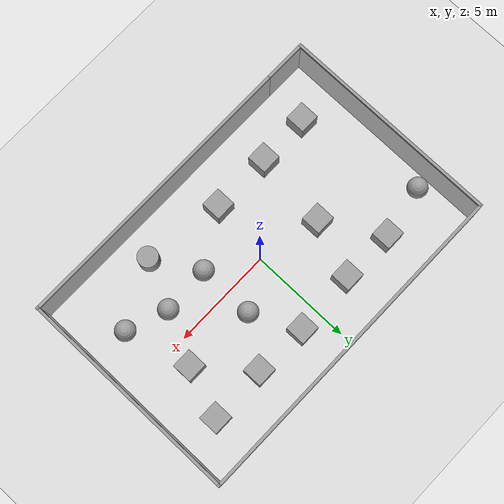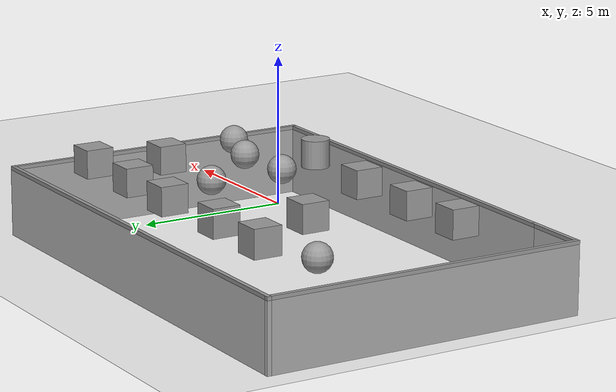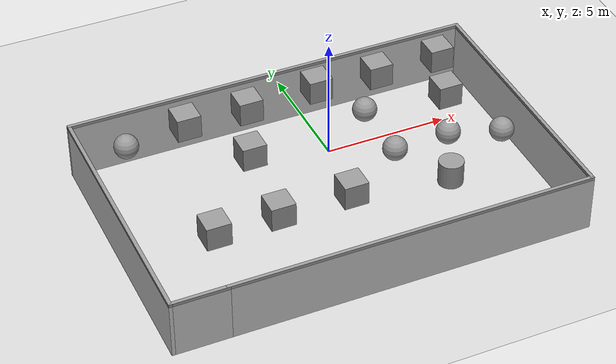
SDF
<sdf version="1.7">
 <world name="world">
  <plugin name="gazebo_ros_state" filename="libgazebo_ros_state.so">
   <ros>
    <namespace>/demo</namespace>
    <remapping>model_states:=model_states_demo</remapping>
    <remapping>link_states:=link_states_demo</remapping>
   </ros>
   <update_rate>1.0</update_rate>
  </plugin>
  <gravity>0 0 -9.8</gravity>
  <physics default="0" name="default_physics" type="ode">
   <max_step_size>0.001</max_step_size>
   <real_time_factor>1</real_time_factor>
   <real_time_update_rate>1000</real_time_update_rate>
  </physics>
  <light name="sun" type="directional">
   <pose>0 0 10 0 -0 0</pose>
   <diffuse>0.8 0.8 0.8 1</diffuse>
   <specular>0.2 0.2 0.2 1</specular>
   <attenuation>
    <range>1000</range>
    <constant>0.9</constant>
    <linear>0.01</linear>
    <quadratic>0.001</quadratic>
   </attenuation>
   <direction>-0.5 0.1 -0.9</direction>
   <spot><inner_angle>0</inner_angle><outer_angle>0</outer_angle><falloff>0</falloff></spot>
  </light>
  <model name="ground_plane">
   <static>1</static>
   <link name="link">
    <collision name="collision">
     <geometry><plane><normal>0 0 1</normal><size>100 100</size></plane></geometry>
     <surface>
      <contact><collide_bitmask>65535</collide_bitmask></contact>
      <friction><ode><mu>100</mu><mu2>50</mu2></ode></friction>
     </surface>
    </collision>
    <visual name="visual">
     <cast_shadows>0</cast_shadows>
     <geometry><plane><normal>0 0 1</normal><size>100 100</size></plane></geometry>
     <material>
      <script><uri>file://media/materials/scripts/gazebo.material</uri><name>Gazebo/Grey</name></script>
     </material>
    </visual>
   </link>
  </model>
  <gravity>0 0 -9.8</gravity>
  <magnetic_field>6e-06 2.3e-05 -4.2e-05</magnetic_field>
  <atmosphere type="adiabatic"/>
  <physics type="ode">
   <max_step_size>0.001</max_step_size>
   <real_time_factor>1</real_time_factor>
   <real_time_update_rate>1000</real_time_update_rate>
  </physics>
  <scene><ambient>0.4 0.4 0.4 1</ambient><background>0.7 0.7 0.7 1</background><shadows>1</shadows></scene>
  <audio><device>default</device></audio>
  <spherical_coordinates>
   <surface_model>EARTH_WGS84</surface_model>
   <latitude_deg>0</latitude_deg>
   <longitude_deg>0</longitude_deg>
   <elevation>0</elevation>
   <heading_deg>0</heading_deg>
  </spherical_coordinates>
  <model name="rl_world">
   <pose>-0.130413 -0.05396 -2.38988 0 -0 1.56821</pose>
   <link name="Wall_4">
    <collision name="Wall_4_Collision">
     <geometry><box><size>15.25 0.15 2.5</size></box></geometry>
     <pose>0 0 1.25 0 -0 0</pose>
    </collision>
    <visual name="Wall_4_Visual">
     <pose>0 0 1.25 0 -0 0</pose>
     <geometry><box><size>15.25 0.15 2.5</size></box></geometry>
     <material>
      <script><uri>file://media/materials/scripts/gazebo.material</uri><name>Gazebo/Grey</name></script>
      <ambient>1 1 1 1</ambient>
     </material>
     <meta><layer>0</layer></meta>
    </visual>
    <pose>-5.675 -1.125 0 0 -0 -1.5708</pose>
   </link>
   <link name="Wall_5">
    <collision name="Wall_5_Collision">
     <geometry><box><size>11.5 0.15 2.5</size></box></geometry>
     <pose>0 0 1.25 0 -0 0</pose>
    </collision>
    <visual name="Wall_5_Visual">
     <pose>0 0 1.25 0 -0 0</pose>
     <geometry><box><size>11.5 0.15 2.5</size></box></geometry>
     <material>
      <script><uri>file://media/materials/scripts/gazebo.material</uri><name>Gazebo/Grey</name></script>
      <ambient>1 1 1 1</ambient>
     </material>
     <meta><layer>0</layer></meta>
    </visual>
    <pose>0 -8.675 0 0 -0 0</pose>
   </link>
   <link name="Wall_6">
    <collision name="Wall_6_Collision">
     <geometry><box><size>17.5 0.15 2.5</size></box></geometry>
     <pose>0 0 1.25 0 -0 0</pose>
    </collision>
    <visual name="Wall_6_Visual">
     <pose>0 0 1.25 0 -0 0</pose>
     <geometry><box><size>17.5 0.15 2.5</size></box></geometry>
     <material>
      <script><uri>file://media/materials/scripts/gazebo.material</uri><name>Gazebo/Grey</name></script>
      <ambient>1 1 1 1</ambient>
     </material>
     <meta><layer>0</layer></meta>
    </visual>
    <pose>5.675 0 0 0 -0 1.5708</pose>
   </link>
   <link name="Wall_7">
    <collision name="Wall_7_Collision">
     <geometry><box><size>11.5 0.15 2.5</size></box></geometry>
     <pose>0 0 1.25 0 -0 0</pose>
    </collision>
    <visual name="Wall_7_Visual">
     <pose>0 0 1.25 0 -0 0</pose>
     <geometry><box><size>11.5 0.15 2.5</size></box></geometry>
     <material>
      <script><uri>file://media/materials/scripts/gazebo.material</uri><name>Gazebo/Grey</name></script>
      <ambient>1 1 1 1</ambient>
     </material>
     <meta><layer>0</layer></meta>
    </visual>
    <pose>0 8.675 0 0 -0 3.14159</pose>
   </link>
   <link name="Wall_8">
    <collision name="Wall_8_Collision">
     <geometry><box><size>2.4 0.15 2.5</size></box></geometry>
     <pose>0 0 1.25 0 -0 0</pose>
    </collision>
    <visual name="Wall_8_Visual">
     <pose>0 0 1.25 0 -0 0</pose>
     <geometry><box><size>2.4 0.15 2.5</size></box></geometry>
     <material>
      <script><uri>file://media/materials/scripts/gazebo.material</uri><name>Gazebo/Grey</name></script>
      <ambient>1 1 1 1</ambient>
     </material>
     <meta><layer>0</layer></meta>
    </visual>
    <pose>-5.675 7.55 0 0 -0 -1.5708</pose>
   </link>
   <static>1</static>
  </model>
  <model name="unit_box">
   <pose>6.54074 3.51749 0.499995 -1e-05 -0 -0</pose>
   <link name="link">
    <inertial>
     <mass>1</mass>
     <inertia>
      <ixx>0.166667</ixx>
      <ixy>0</ixy>
      <ixz>0</ixz>
      <iyy>0.166667</iyy>
      <iyz>0</iyz>
      <izz>0.166667</izz>
     </inertia>
    </inertial>
    <collision name="collision"><geometry><box><size>1 1 1</size></box></geometry></collision>
    <visual name="visual">
     <geometry><box><size>1 1 1</size></box></geometry>
     <material>
      <script><name>Gazebo/Grey</name><uri>file://media/materials/scripts/gazebo.material</uri></script>
     </material>
    </visual>
   </link>
  </model>
  <model name="unit_box_0">
   <pose>3.74154 3.47762 0.499995 0 1e-05 0</pose>
   <link name="link">
    <inertial>
     <mass>1</mass>
     <inertia>
      <ixx>0.166667</ixx>
      <ixy>0</ixy>
      <ixz>0</ixz>
      <iyy>0.166667</iyy>
      <iyz>0</iyz>
      <izz>0.166667</izz>
     </inertia>
    </inertial>
    <collision name="collision"><geometry><box><size>1 1 1</size></box></geometry></collision>
    <visual name="visual">
     <geometry><box><size>1 1 1</size></box></geometry>
     <material>
      <script><name>Gazebo/Grey</name><uri>file://media/materials/scripts/gazebo.material</uri></script>
     </material>
    </visual>
   </link>
  </model>
  <model name="unit_box_1">
   <pose>1.1021 3.5975 0.499995 -1e-05 -0 -0</pose>
   <link name="link">
    <inertial>
     <mass>1</mass>
     <inertia>
      <ixx>0.166667</ixx>
      <ixy>0</ixy>
      <ixz>0</ixz>
      <iyy>0.166667</iyy>
      <iyz>0</iyz>
      <izz>0.166667</izz>
     </inertia>
    </inertial>
    <collision name="collision"><geometry><box><size>1 1 1</size></box></geometry></collision>
    <visual name="visual">
     <geometry><box><size>1 1 1</size></box></geometry>
     <material>
      <script><name>Gazebo/Grey</name><uri>file://media/materials/scripts/gazebo.material</uri></script>
     </material>
    </visual>
   </link>
  </model>
  <model name="unit_box_2">
   <pose>-2.01701 3.43748 0.499995 0 1e-05 0</pose>
   <link name="link">
    <inertial>
     <mass>1</mass>
     <inertia>
      <ixx>0.166667</ixx>
      <ixy>0</ixy>
      <ixz>0</ixz>
      <iyy>0.166667</iyy>
      <iyz>0</iyz>
      <izz>0.166667</izz>
     </inertia>
    </inertial>
    <collision name="collision"><geometry><box><size>1 1 1</size></box></geometry></collision>
    <visual name="visual">
     <geometry><box><size>1 1 1</size></box></geometry>
     <material>
      <script><name>Gazebo/Grey</name><uri>file://media/materials/scripts/gazebo.material</uri></script>
     </material>
    </visual>
   </link>
  </model>
  <model name="unit_box_3">
   <pose>-4.65645 3.47763 0.499995 -1e-05 -0 -0</pose>
   <link name="link">
    <inertial>
     <mass>1</mass>
     <inertia>
      <ixx>0.166667</ixx>
      <ixy>0</ixy>
      <ixz>0</ixz>
      <iyy>0.166667</iyy>
      <iyz>0</iyz>
      <izz>0.166667</izz>
     </inertia>
    </inertial>
    <collision name="collision"><geometry><box><size>1 1 1</size></box></geometry></collision>
    <visual name="visual">
     <geometry><box><size>1 1 1</size></box></geometry>
     <material>
      <script><name>Gazebo/Grey</name><uri>file://media/materials/scripts/gazebo.material</uri></script>
     </material>
    </visual>
   </link>
  </model>
  <model name="unit_sphere">
   <pose>-7.29589 2.99769 0.5 0 -0 0</pose>
   <link name="link">
    <inertial>
     <mass>1</mass>
     <inertia><ixx>0.1</ixx><ixy>0</ixy><ixz>0</ixz><iyy>0.1</iyy><iyz>0</iyz><izz>0.1</izz></inertia>
    </inertial>
    <collision name="collision"><geometry><sphere><radius>0.5</radius></sphere></geometry></collision>
    <visual name="visual">
     <geometry><sphere><radius>0.5</radius></sphere></geometry>
     <material>
      <script><name>Gazebo/Grey</name><uri>file://media/materials/scripts/gazebo.material</uri></script>
     </material>
    </visual>
   </link>
  </model>
  <model name="unit_sphere_0">
   <pose>6.54074 -2.08104 0.5 0 -0 0</pose>
   <link name="link">
    <inertial>
     <mass>1</mass>
     <inertia><ixx>0.1</ixx><ixy>0</ixy><ixz>0</ixz><iyy>0.1</iyy><iyz>0</iyz><izz>0.1</izz></inertia>
    </inertial>
    <collision name="collision"><geometry><sphere><radius>0.5</radius></sphere></geometry></collision>
    <visual name="visual">
     <geometry><sphere><radius>0.5</radius></sphere></geometry>
     <material>
      <script><name>Gazebo/Grey</name><uri>file://media/materials/scripts/gazebo.material</uri></script>
     </material>
    </visual>
   </link>
  </model>
  <model name="unit_sphere_1">
   <pose>4.54139 -1.36133 0.5 0 -0 0</pose>
   <link name="link">
    <inertial>
     <mass>1</mass>
     <inertia><ixx>0.1</ixx><ixy>0</ixy><ixz>0</ixz><iyy>0.1</iyy><iyz>0</iyz><izz>0.1</izz></inertia>
    </inertial>
    <collision name="collision"><geometry><sphere><radius>0.5</radius></sphere></geometry></collision>
    <visual name="visual">
     <geometry><sphere><radius>0.5</radius></sphere></geometry>
     <material>
      <script><name>Gazebo/Grey</name><uri>file://media/materials/scripts/gazebo.material</uri></script>
     </material>
    </visual>
   </link>
  </model>
  <model name="unit_sphere_2">
   <pose>2.18185 -1.44121 0.5 0 -0 0</pose>
   <link name="link">
    <inertial>
     <mass>1</mass>
     <inertia><ixx>0.1</ixx><ixy>0</ixy><ixz>0</ixz><iyy>0.1</iyy><iyz>0</iyz><izz>0.1</izz></inertia>
    </inertial>
    <collision name="collision"><geometry><sphere><radius>0.5</radius></sphere></geometry></collision>
    <visual name="visual">
     <geometry><sphere><radius>0.5</radius></sphere></geometry>
     <material>
      <script><name>Gazebo/Grey</name><uri>file://media/materials/scripts/gazebo.material</uri></script>
     </material>
    </visual>
   </link>
  </model>
  <model name="unit_box_4">
   <pose>-0.417446 -3.00083 0.499995 0 1e-05 0</pose>
   <link name="link">
    <inertial>
     <mass>1</mass>
     <inertia>
      <ixx>0.166667</ixx>
      <ixy>0</ixy>
      <ixz>0</ixz>
      <iyy>0.166667</iyy>
      <iyz>0</iyz>
      <izz>0.166667</izz>
     </inertia>
    </inertial>
    <collision name="collision"><geometry><box><size>1 1 1</size></box></geometry></collision>
    <visual name="visual">
     <geometry><box><size>1 1 1</size></box></geometry>
     <material>
      <script><name>Gazebo/Grey</name><uri>file://media/materials/scripts/gazebo.material</uri></script>
     </material>
    </visual>
   </link>
  </model>
  <model name="unit_box_5">
   <pose>-3.41681 -3.00082 0.499995 -1e-05 -0 -0</pose>
   <link name="link">
    <inertial>
     <mass>1</mass>
     <inertia>
      <ixx>0.166667</ixx>
      <ixy>0</ixy>
      <ixz>0</ixz>
      <iyy>0.166667</iyy>
      <iyz>0</iyz>
      <izz>0.166667</izz>
     </inertia>
    </inertial>
    <collision name="collision"><geometry><box><size>1 1 1</size></box></geometry></collision>
    <visual name="visual">
     <geometry><box><size>1 1 1</size></box></geometry>
     <material>
      <script><name>Gazebo/Grey</name><uri>file://media/materials/scripts/gazebo.material</uri></script>
     </material>
    </visual>
   </link>
  </model>
  <model name="unit_box_6">
   <pose>-6.0161 -3.04084 0.499995 0 1e-05 0</pose>
   <link name="link">
    <inertial>
     <mass>1</mass>
     <inertia>
      <ixx>0.166667</ixx>
      <ixy>0</ixy>
      <ixz>0</ixz>
      <iyy>0.166667</iyy>
      <iyz>0</iyz>
      <izz>0.166667</izz>
     </inertia>
    </inertial>
    <collision name="collision"><geometry><box><size>1 1 1</size></box></geometry></collision>
    <visual name="visual">
     <geometry><box><size>1 1 1</size></box></geometry>
     <material>
      <script><name>Gazebo/Grey</name><uri>file://media/materials/scripts/gazebo.material</uri></script>
     </material>
    </visual>
   </link>
  </model>
  <model name="unit_box_7">
   <pose>-3.01675 0.718298 0.499995 -1e-05 -0 -0</pose>
   <link name="link">
    <inertial>
     <mass>1</mass>
     <inertia>
      <ixx>0.166667</ixx>
      <ixy>0</ixy>
      <ixz>0</ixz>
      <iyy>0.166667</iyy>
      <iyz>0</iyz>
      <izz>0.166667</izz>
     </inertia>
    </inertial>
    <collision name="collision"><geometry><box><size>1 1 1</size></box></geometry></collision>
    <visual name="visual">
     <geometry><box><size>1 1 1</size></box></geometry>
     <material>
      <script><name>Gazebo/Grey</name><uri>file://media/materials/scripts/gazebo.material</uri></script>
     </material>
    </visual>
   </link>
  </model>
  <model name="unit_sphere_3">
   <pose>2.18185 1.31798 0.5 0 -0 0</pose>
   <link name="link">
    <inertial>
     <mass>1</mass>
     <inertia><ixx>0.1</ixx><ixy>0</ixy><ixz>0</ixz><iyy>0.1</iyy><iyz>0</iyz><izz>0.1</izz></inertia>
    </inertial>
    <collision name="collision"><geometry><sphere><radius>0.5</radius></sphere></geometry></collision>
    <visual name="visual">
     <geometry><sphere><radius>0.5</radius></sphere></geometry>
     <material>
      <script><name>Gazebo/Grey</name><uri>file://media/materials/scripts/gazebo.material</uri></script>
     </material>
    </visual>
   </link>
  </model>
  <model name="unit_box_8">
   <pose>5.70102 1.11803 0.499995 -1e-05 -0 0</pose>
   <link name="link">
    <inertial>
     <mass>1</mass>
     <inertia>
      <ixx>0.166667</ixx>
      <ixy>0</ixy>
      <ixz>0</ixz>
      <iyy>0.166667</iyy>
      <iyz>0</iyz>
      <izz>0.166667</izz>
     </inertia>
    </inertial>
    <collision name="collision"><geometry><box><size>1 1 1</size></box></geometry></collision>
    <visual name="visual">
     <geometry><box><size>1 1 1</size></box></geometry>
     <material>
      <script><name>Gazebo/Grey</name><uri>file://media/materials/scripts/gazebo.material</uri></script>
     </material>
    </visual>
   </link>
  </model>
  <model name="unit_cylinder">
   <pose>3.50151 -3.60072 0.499997 3e-06 4e-06 -0</pose>
   <link name="link">
    <inertial>
     <mass>1</mass>
     <inertia><ixx>0.145833</ixx><ixy>0</ixy><ixz>0</ixz><iyy>0.145833</iyy><iyz>0</iyz><izz>0.125</izz></inertia>
    </inertial>
    <collision name="collision">
     <geometry><cylinder><radius>0.5</radius><length>1</length></cylinder></geometry>
    </collision>
    <visual name="visual">
     <geometry><cylinder><radius>0.5</radius><length>1</length></cylinder></geometry>
     <material>
      <script><name>Gazebo/Grey</name><uri>file://media/materials/scripts/gazebo.material</uri></script>
     </material>
    </visual>
   </link>
  </model>
 </world>
</sdf>
